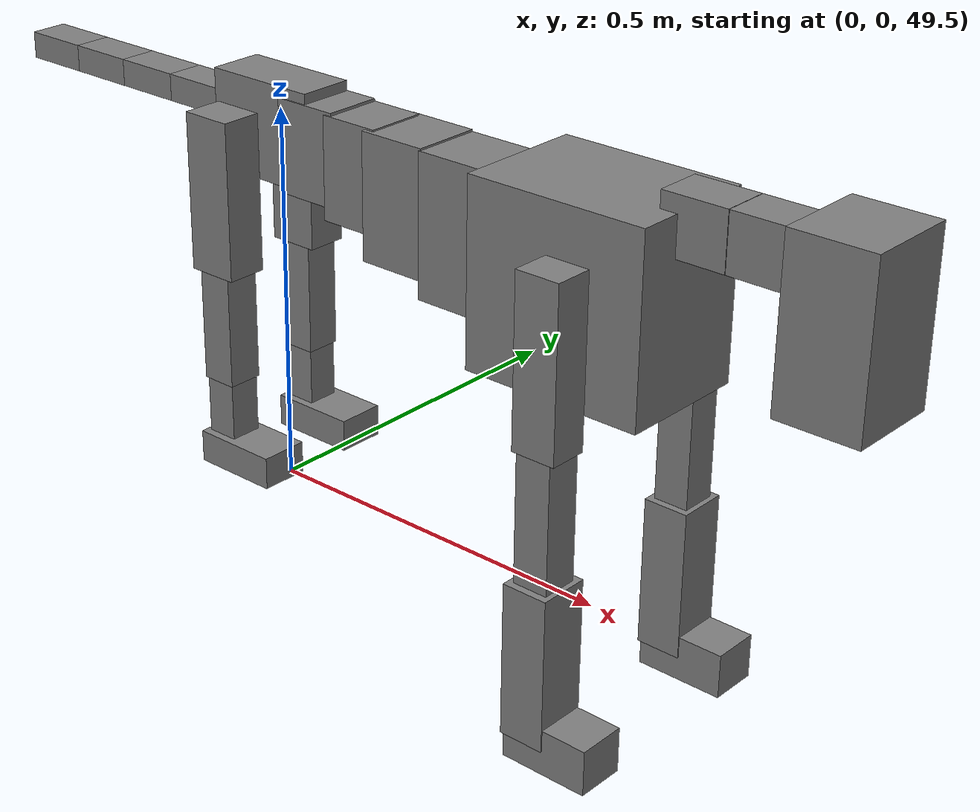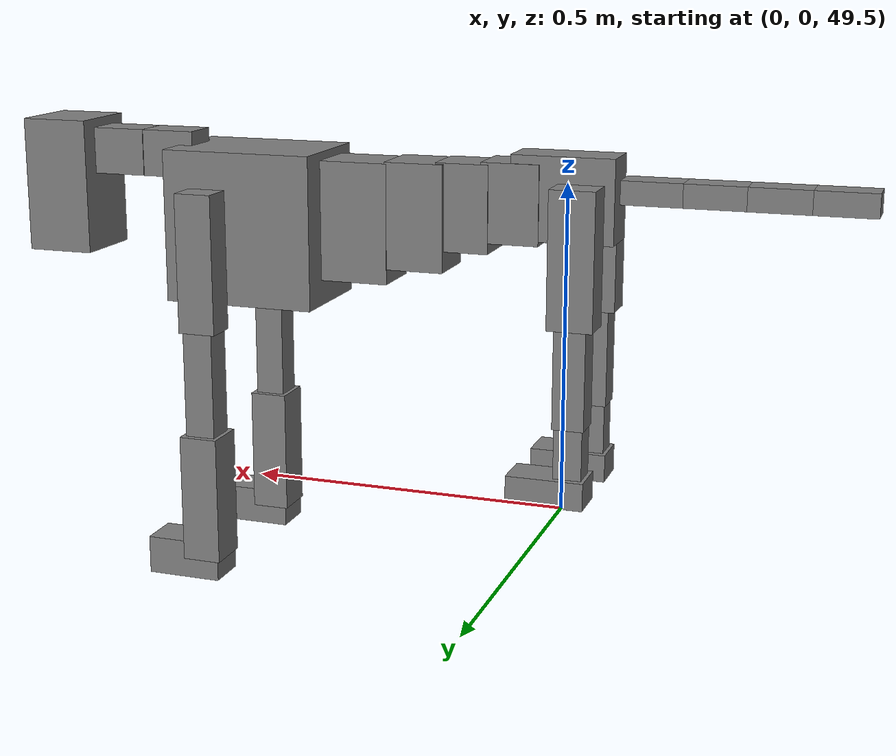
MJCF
<mujoco model="dog">

    <default>
        <joint armature="0.02" stiffness="1" damping="0.2" limited="true"/>
        <geom condim="3" friction="1 0.05 0.05" margin="0.01"/>
        <motor ctrllimited="true" ctrlrange="-1.0 1.0" forcelimited="true" gear="50"/>
    </default>

    <compiler inertiafromgeom="true" angle="radian"/>

    <option timestep="0.016" iterations="50" tolerance="1e-10" solver="Newton" jacobian="dense" cone="pyramidal"/>

    <size nconmax="20000" njmax="60000" nstack="5000000"/>
    <visual>
        <map force="0.1" zfar="30"/>
        <rgba haze="0.15 0.25 0.35 1"/>
        <quality shadowsize="2048"/>
        <global offwidth="800" offheight="800"/>
    </visual>

    <asset>
        <texture type="skybox" builtin="gradient" rgb1="0.3 0.5 0.7" rgb2="0 0 0" width="512" height="512"/>
        <texture name="texplane" type="2d" builtin="checker" rgb1=".2 .3 .4" rgb2=".1 0.15 0.2" width="512" height="512"
                 mark="cross" markrgb=".8 .8 .8"/>
        <texture name="texgeom" type="cube" builtin="flat" mark="cross" width="127" height="1278" rgb1="0.8 0.6 0.4"
                 rgb2="0.8 0.6 0.4" markrgb="1 1 1" random="0.01"/>

        <material name="matplane" reflectance="0.3" texture="texplane" texrepeat="1 1" texuniform="true"/>
        <material name="matgeom" texture="texgeom" texuniform="true" rgba="0.8 0.6 .4 1"/>
    </asset>

    <worldbody>
        <geom name="floor" pos="0 0 0" size="0 0 .25" type="plane" material="matplane" condim="3"/>

        <light directional="false" diffuse=".2 .2 .2" specular="0 0 0" pos="0 0 5" dir="0 0 -1" castshadow="false"/>
        <light mode="targetbodycom" target="torso" directional="false" diffuse=".8 .8 .8" specular="0.3 0.3 0.3"
               pos="0 0 4.0" dir="0 0 -1"/>

        <body name="root" pos="0 0 50">
            <freejoint name="root_1"/>
            <geom type="box" pos="0 0 -0.02" size="0.0774  0.0358  0.063" density="2030"/>

            <body name="spine1" pos="0.054 0 0">
                <joint name="spine1_y" axis="0 1 0" range="0 0.7" limited="true"/>
                <geom type="box" pos="0.02375 0 -0.03" size="0.04375  0.0375  0.05985" density="2030"/>

                <body name="spine2" pos="0.0612 0 0">
                    <joint name="spine2_y" axis="0 1 0" range="-0.15 0.15" limited="true"/>
                    <geom type="box" pos="0.03555  0  -0.04" size="0.04055  0.039  0.06615" density="2030"/>

                    <body name="spine3" pos="0.0730 0 0">
                        <joint name="spine3_y" axis="0 1 0" range="-0.15 0.15" limited="true"/>
                        <geom type="box" pos="0.03555  0  -0.057" size="0.04555  0.0445  0.081" density="2030"/>

                        <body name="spine4" pos="0.0780 0 0">
                            <joint name="spine4_y" axis="0 1 0" range="-0.15 0.15" limited="true"/>
                            <geom type="box" pos="0.05265  0  -0.07" size="0.05265  0.045  0.09135" density="2030"/>

                            <body name="torso" pos="0.1082 0 0">
                                <joint name="torso_y" axis="0 1 0" range="-0.15 0.15" limited="true"/>
                                <geom type="box" pos="0.11925  0  -0.085" size="0.11925  0.085  0.11745"
                                      density="2030"/>

                                <body name="neck1" pos="0.2160  0   0.0180">
                                    <joint name="neck1_y" axis="0 1 0" range="-1.2  -1" limited="true"/>
                                    <geom type="box" pos="0.0423  0  0" size="0.0423  0.03  0.036" density="2325"/>

                                    <body name="neck2" pos="0.0853  0  0">
                                        <joint name="neck2_y" axis="0 1 0" range="0.1  0" limited="true"/>
                                        <geom type="box" pos="0.0423  0  0" size="0.0423  0.03  0.036" density="2325"/>

                                        <body name="head" pos="0.0853  0  0">
                                            <joint name="head_y" axis="0 1 0" range="-0.3  -0.2" limited="true"/>
                                            <geom type="box" pos="0.0531  0  -0.055" size="0.0531  0.06  0.1044"
                                                  density="4030"/>

                                        </body>
                                    </body>
                                </body>

                                <body name="front_shoulder" pos="0.156  0   -0.0480">
                                    <joint name="front_shoulder_y" axis="0 1 0" range="-1 1.5" limited="true"/>
                                    <geom type="box" pos="0 0.13 -0.0796" size="0.0290  0.0248  0.1063" density="1158"/>
                                    <geom type="box" pos="0 -0.13 -0.0796" size="0.0290  0.0248  0.1063"
                                          density="1158"/>

                                    <body name="front_elbow" pos="0  0  -0.1592">
                                        <joint name="front_elbow_y" axis="0 1 0" range="-2 0" limited="true"/>
                                        <geom type="box" pos="0 0.13 -0.1008" size="0.0232  0.0237  0.1008"
                                              density="1081"/>
                                        <geom type="box" pos="0 -0.13 -0.1008" size="0.0232  0.0237  0.1008"
                                              density="1081"/>

                                        <body name="front_wrist" pos="0  0  -0.2017">
                                            <joint name="front_wrist_y" axis="0 1 0" range="-0.2 0" limited="true"/>
                                            <geom type="box" pos="0 0.13 -0.0855" size="0.0299  0.0332  0.0986"
                                                  density="1664"/>
                                            <geom type="box" pos="0 -0.13 -0.0855" size="0.0299  0.0332  0.0986"
                                                  density="1664"/>

                                            <body name="front_finger_end" pos="0  0  -0.1709">
                                                <joint name="front_finger_y" axis="0 1 0" range="-0.4 1"
                                                       limited="true"/>
                                                <geom type="box" pos="0.0318  0.13  -0.0143"
                                                      size="0.0583  0.0318  0.0293" density="1515"/>
                                                <geom type="box" pos="0.0318  -0.13  -0.0143"
                                                      size="0.0583  0.0318  0.0293" density="1515"/>

                                            </body>

                                        </body>
                                    </body>
                                </body>

                            </body>
                        </body>
                    </body>
                </body>
            </body>

            <body name="back_hip" pos="-0.03 0 -0.018">
                <joint name="back_hip_y" axis="0 1 0" range="-1.5 0.3" limited="true"/>
                <geom type="box" pos="0 0.07 -0.0792" size="0.0340  0.0267  0.1020" density="1154"/>
                <geom type="box" pos="0 -0.07 -0.0792" size="0.0340  0.0267  0.1020" density="1154"/>

                <body name="back_knee" pos="0  0  -0.1584">
                    <joint name="back_knee_y" axis="0 1 0" range="0 2.8" limited="true"/>
                    <geom type="box" pos="0 0.07 -0.0774" size="0.0237  0.0234  0.0929" density="1227"/>
                    <geom type="box" pos="0 -0.07 -0.0774" size="0.0237  0.0234  0.0929" density="1227"/>

                    <body name="back_ankle" pos="0  0  -0.1547">
                        <joint name="back_ankle_y" axis="0 1 0" range="-2.2 0" limited="true"/>
                        <geom type="box" pos="0 0.07 -0.0529" size="0.0212  0.0212  0.0642" density="1284"/>
                        <geom type="box" pos="0 -0.07 -0.0529" size="0.0212  0.0212  0.0642" density="1284"/>

                        <body name="back_toe_end" pos="0  0  -0.1059">
                            <joint name="back_toe_y" axis="0 1 0" range="-0.4 1" limited="true"/>
                            <geom type="box" pos="0.0319  0.07  -0.0061" size="0.0585  0.0319  0.0211" density="1515"/>
                            <geom type="box" pos="0.0319  -0.07  -0.0061" size="0.0585  0.0319  0.0211" density="1515"/>

                        </body>
                    </body>
                </body>
            </body>

            <body name="tail1" pos="-0.074 0 -0.006">
                <joint name="tail1_y" axis="0 1 0" range="-0.2 0.2" limited="true"/>
                <geom type="box" pos="-0.0536  0  0" size="0.045  0.025  0.0175" density="1587"/>

                <body name="tail2" pos="-0.09 0 0">
                    <joint name="tail2_y" axis="0 1 0" range="-0.2 0.2" limited="true"/>
                    <geom type="box" pos="-0.0536  0  0" size="0.045  0.025  0.0175" density="1587"/>

                    <body name="tail3" pos="-0.09 0 0">
                        <joint name="tail3_y" axis="0 1 0" range="-0.2 0.2" limited="true"/>
                        <geom type="box" pos="-0.0536  0  0" size="0.045  0.025  0.0175" density="1587"/>

                        <body name="tail4" pos="-0.09 0 0">
                            <joint name="tail4_y" axis="0 1 0" range="-0.2 0.2" limited="true"/>
                            <geom type="box" pos="-0.0536  0  0" size="0.045  0.025  0.0175" density="1587"/>

                        </body>
                    </body>
                </body>
            </body>
        </body>
    </worldbody>

    <actuator>
        <motor joint="spine1_y" forcerange="-150 150     "/>
        <motor joint="spine2_y" forcerange="-150 150     "/>
        <motor joint="spine3_y" forcerange="-150 150     "/>
        <motor joint="spine4_y" forcerange="-150 150     "/>
        <motor joint="torso_y" forcerange="-150 150     "/>
        <motor joint="neck1_y" forcerange="-100 100       "/>
        <motor joint="neck2_y" forcerange="-100 100       "/>
        <motor joint="head_y" forcerange="-150 150       "/>
        <motor joint="front_shoulder_y" forcerange="-124.24 141.21"/>
        <motor joint="front_elbow_y" forcerange="-140.05 132.65"/>
        <motor joint="front_wrist_y" forcerange="-137.76 127.95"/>
        <motor joint="front_finger_y" forcerange="-89.43 40.16"/>
        <motor joint="back_hip_y" forcerange="-240.08 315.39"/>
        <motor joint="back_knee_y" forcerange="-296.16 243.57"/>
        <motor joint="back_angle_y" forcerange="-121.14 118.79"/>
        <motor joint="back_toe_y" forcerange="-47.90 127.23"/>
        <motor joint="tail1_y" forcerange="-50 50     "/>
        <motor joint="tail2_y" forcerange="-50 50     "/>
        <motor joint="tail3_y" forcerange="-50 50     "/>
        <motor joint="tail4_y" forcerange="-50 50     "/>
    </actuator>
</mujoco>
